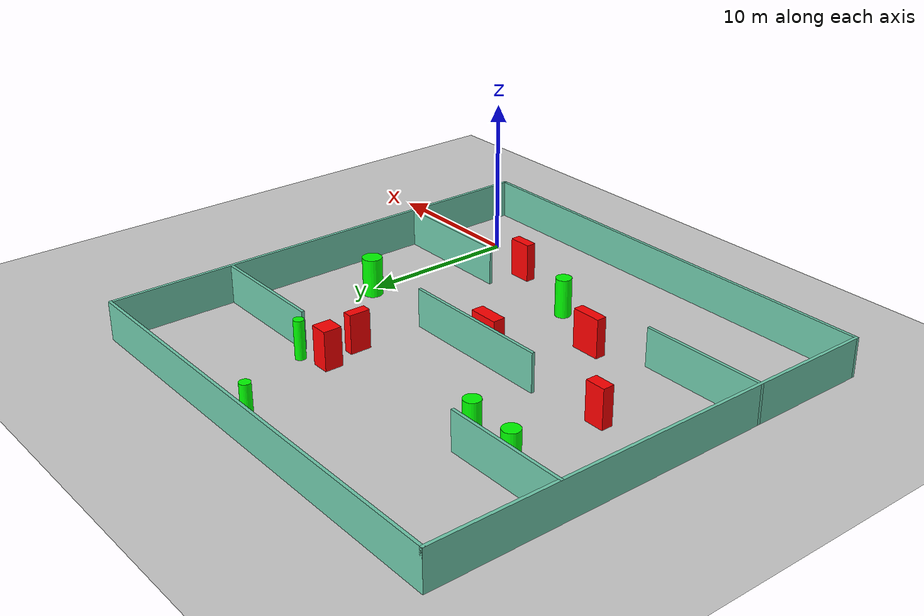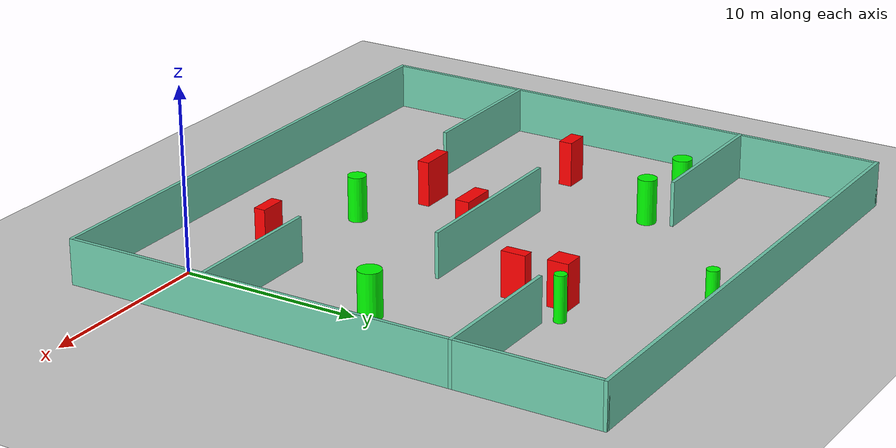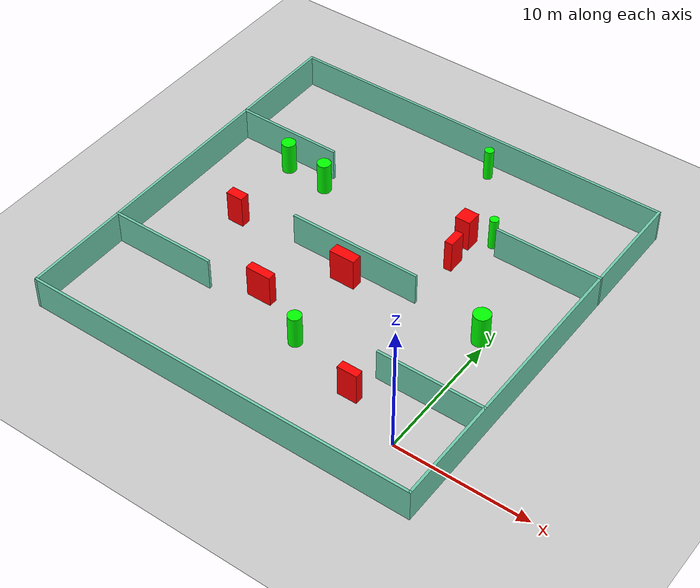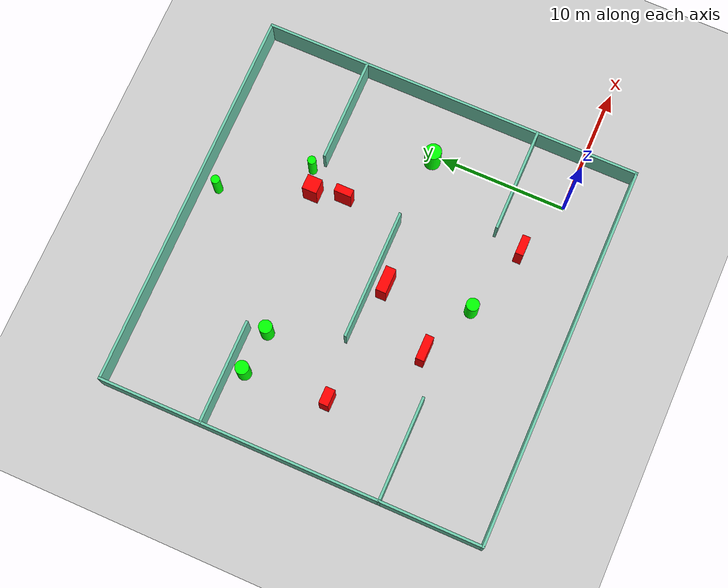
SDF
<sdf version="1.7">
 <world name="default">
  <light name="sun" type="directional">
   <pose>0 0 10 0 -0 0</pose>
   <diffuse>0.8 0.8 0.8 1</diffuse>
   <specular>0.2 0.2 0.2 1</specular>
   <attenuation>
    <range>1000</range>
    <constant>0.9</constant>
    <linear>0.01</linear>
    <quadratic>0.001</quadratic>
   </attenuation>
   <direction>-0.5 0.1 -0.9</direction>
   <spot><inner_angle>0</inner_angle><outer_angle>0</outer_angle><falloff>0</falloff></spot>
  </light>
  <model name="ground_plane">
   <static>1</static>
   <link name="link">
    <collision name="collision">
     <geometry><plane><normal>0 0 1</normal><size>100 100</size></plane></geometry>
     <surface>
      <contact><collide_bitmask>65535</collide_bitmask></contact>
      <friction><ode><mu>100</mu><mu2>50</mu2></ode></friction>
     </surface>
    </collision>
    <visual name="visual">
     <cast_shadows>0</cast_shadows>
     <geometry><plane><normal>0 0 1</normal><size>100 100</size></plane></geometry>
     <material>
      <script><uri>file://media/materials/scripts/gazebo.material</uri><name>Gazebo/Grey</name></script>
     </material>
    </visual>
   </link>
  </model>
  <gravity>0 0 -9.8</gravity>
  <magnetic_field>6e-06 2.3e-05 -4.2e-05</magnetic_field>
  <atmosphere type="adiabatic"/>
  <physics type="ode">
   <max_step_size>0.001</max_step_size>
   <real_time_factor>1</real_time_factor>
   <real_time_update_rate>1000</real_time_update_rate>
  </physics>
  <scene><ambient>0.4 0.4 0.4 1</ambient><background>0.7 0.7 0.7 1</background><shadows>1</shadows></scene>
  <spherical_coordinates>
   <surface_model>EARTH_WGS84</surface_model>
   <latitude_deg>0</latitude_deg>
   <longitude_deg>0</longitude_deg>
   <elevation>0</elevation>
   <heading_deg>0</heading_deg>
  </spherical_coordinates>
  <model name="my_base_walls">
   <link name="Wall_10">
    <collision name="Wall_10_Collision">
     <geometry><box><size>8.2 0.2 2.5</size></box></geometry>
     <pose>0 0 1.25 0 -0 0</pose>
    </collision>
    <visual name="Wall_10_Visual">
     <pose>0 0 1.25 0 -0 0</pose>
     <geometry><box><size>8.2 0.2 2.5</size></box></geometry>
     <material>
      <script><uri>file://media/materials/scripts/gazebo.material</uri><name>Gazebo/Grey</name></script>
      <ambient>0.435294 0.796078 0.67451 1</ambient>
     </material>
     <meta><layer>0</layer></meta>
    </visual>
    <pose>-11 -7 0 0 -0 0</pose>
   </link>
   <link name="Wall_12">
    <collision name="Wall_12_Collision">
     <geometry><box><size>8.2 0.2 2.5</size></box></geometry>
     <pose>0 0 1.25 0 -0 0</pose>
    </collision>
    <visual name="Wall_12_Visual">
     <pose>0 0 1.25 0 -0 0</pose>
     <geometry><box><size>8.2 0.2 2.5</size></box></geometry>
     <material>
      <script><uri>file://media/materials/scripts/gazebo.material</uri><name>Gazebo/Grey</name></script>
      <ambient>0.435294 0.796078 0.67451 1</ambient>
     </material>
     <meta><layer>0</layer></meta>
    </visual>
    <pose>-11 7 0 0 -0 0</pose>
   </link>
   <link name="Wall_14">
    <collision name="Wall_14_Collision">
     <geometry><box><size>8.2 0.2 2.5</size></box></geometry>
     <pose>0 0 1.25 0 -0 0</pose>
    </collision>
    <visual name="Wall_14_Visual">
     <pose>0 0 1.25 0 -0 0</pose>
     <geometry><box><size>8.2 0.2 2.5</size></box></geometry>
     <material>
      <script><uri>file://media/materials/scripts/gazebo.material</uri><name>Gazebo/Grey</name></script>
      <ambient>0.435294 0.796078 0.67451 1</ambient>
     </material>
     <meta><layer>0</layer></meta>
    </visual>
    <pose>11 7 0 0 -0 3.14159</pose>
   </link>
   <link name="Wall_16">
    <collision name="Wall_16_Collision">
     <geometry><box><size>10.2 0.2 2.5</size></box></geometry>
     <pose>0 0 1.25 0 -0 0</pose>
    </collision>
    <visual name="Wall_16_Visual">
     <pose>0 0 1.25 0 -0 0</pose>
     <geometry><box><size>10.2 0.2 2.5</size></box></geometry>
     <material>
      <script><uri>file://media/materials/scripts/gazebo.material</uri><name>Gazebo/Grey</name></script>
      <ambient>0.435294 0.796078 0.67451 1</ambient>
     </material>
     <meta><layer>0</layer></meta>
    </visual>
    <pose>0 0 0 0 -0 3.14159</pose>
   </link>
   <link name="Wall_2">
    <collision name="Wall_2_Collision">
     <geometry><box><size>30.2 0.2 2.5</size></box></geometry>
     <pose>0 0 1.25 0 -0 0</pose>
    </collision>
    <visual name="Wall_2_Visual">
     <pose>0 0 1.25 0 -0 0</pose>
     <geometry><box><size>30.2 0.2 2.5</size></box></geometry>
     <material>
      <script><uri>file://media/materials/scripts/gazebo.material</uri><name>Gazebo/Grey</name></script>
      <ambient>0.435294 0.796078 0.67451 1</ambient>
     </material>
     <meta><layer>0</layer></meta>
    </visual>
    <pose>0 -15 0 0 -0 3.14159</pose>
   </link>
   <link name="Wall_3">
    <collision name="Wall_3_Collision">
     <geometry><box><size>30.2 0.2 2.5</size></box></geometry>
     <pose>0 0 1.25 0 -0 0</pose>
    </collision>
    <visual name="Wall_3_Visual">
     <pose>0 0 1.25 0 -0 0</pose>
     <geometry><box><size>30.2 0.2 2.5</size></box></geometry>
     <material>
      <script><uri>file://media/materials/scripts/gazebo.material</uri><name>Gazebo/Grey</name></script>
      <ambient>0.435294 0.796078 0.67451 1</ambient>
     </material>
     <meta><layer>0</layer></meta>
    </visual>
    <pose>-15 0 0 0 -0 1.5708</pose>
   </link>
   <link name="Wall_4">
    <collision name="Wall_4_Collision">
     <geometry><box><size>30.2 0.2 2.5</size></box></geometry>
     <pose>0 0 1.25 0 -0 0</pose>
    </collision>
    <visual name="Wall_4_Visual">
     <pose>0 0 1.25 0 -0 0</pose>
     <geometry><box><size>30.2 0.2 2.5</size></box></geometry>
     <material>
      <script><uri>file://media/materials/scripts/gazebo.material</uri><name>Gazebo/Grey</name></script>
      <ambient>0.435294 0.796078 0.67451 1</ambient>
     </material>
     <meta><layer>0</layer></meta>
    </visual>
    <pose>0 15 0 0 -0 0</pose>
   </link>
   <link name="Wall_6">
    <collision name="Wall_6_Collision">
     <geometry><box><size>30.2 0.2 2.5</size></box></geometry>
     <pose>0 0 1.25 0 -0 0</pose>
    </collision>
    <visual name="Wall_6_Visual">
     <pose>0 0 1.25 0 -0 0</pose>
     <geometry><box><size>30.2 0.2 2.5</size></box></geometry>
     <material>
      <script><uri>file://media/materials/scripts/gazebo.material</uri><name>Gazebo/Grey</name></script>
      <ambient>0.435294 0.796078 0.67451 1</ambient>
     </material>
     <meta><layer>0</layer></meta>
    </visual>
    <pose>15 0 0 0 -0 1.5708</pose>
   </link>
   <link name="Wall_8">
    <collision name="Wall_8_Collision">
     <geometry><box><size>8.2 0.2 2.5</size></box></geometry>
     <pose>0 0 1.25 0 -0 0</pose>
    </collision>
    <visual name="Wall_8_Visual">
     <pose>0 0 1.25 0 -0 0</pose>
     <geometry><box><size>8.2 0.2 2.5</size></box></geometry>
     <material>
      <script><uri>file://media/materials/scripts/gazebo.material</uri><name>Gazebo/Grey</name></script>
      <ambient>0.435294 0.796078 0.67451 1</ambient>
     </material>
     <meta><layer>0</layer></meta>
    </visual>
    <pose>11 -7 0 0 -0 3.14159</pose>
   </link>
   <static>1</static>
   <pose>-11 11 0 0 -0 0</pose>
  </model>
  <model name="cylinder1">
   <static>1</static>
   <link name="link">
    <inertial>
     <mass>1</mass>
     <inertia><ixx>0.5</ixx><ixy>0</ixy><ixz>0</ixz><iyy>0.5</iyy><iyz>0</iyz><izz>1</izz></inertia>
    </inertial>
    <collision name="collision">
     <geometry><cylinder><radius>0.32824538255338226</radius><length>2.5</length></cylinder></geometry>
    </collision>
    <visual name="visual">
     <geometry><cylinder><radius>0.32824538255338226</radius><length>2.5</length></cylinder></geometry>
     <material>
      <ambient>0 1 0 1</ambient>
      <diffuse>0 1 0 1</diffuse>
      <specular>0.1 0.1 0.1 1</specular>
      <emissive>0 0 0 0</emissive>
     </material>
    </visual>
   </link>
   <pose>-4.758998028650467 18.72728291316398 1.25 0 0 0</pose>
  </model>
  <model name="cylinder2">
   <static>1</static>
   <link name="link">
    <inertial>
     <mass>1</mass>
     <inertia><ixx>0.5</ixx><ixy>0</ixy><ixz>0</ixz><iyy>0.5</iyy><iyz>0</iyz><izz>1</izz></inertia>
    </inertial>
    <collision name="collision">
     <geometry><cylinder><radius>0.5347734483197215</radius><length>2.5</length></cylinder></geometry>
    </collision>
    <visual name="visual">
     <geometry><cylinder><radius>0.5347734483197215</radius><length>2.5</length></cylinder></geometry>
     <material>
      <ambient>0 1 0 1</ambient>
      <diffuse>0 1 0 1</diffuse>
      <specular>0.1 0.1 0.1 1</specular>
      <emissive>0 0 0 0</emissive>
     </material>
    </visual>
   </link>
   <pose>-21.17926220542279 16.90246151942865 1.25 0 0 0</pose>
  </model>
  <model name="cylinder3">
   <static>1</static>
   <link name="link">
    <inertial>
     <mass>1</mass>
     <inertia><ixx>0.5</ixx><ixy>0</ixy><ixz>0</ixz><iyy>0.5</iyy><iyz>0</iyz><izz>1</izz></inertia>
    </inertial>
    <collision name="collision">
     <geometry><cylinder><radius>0.3434992782605161</radius><length>2.5</length></cylinder></geometry>
    </collision>
    <visual name="visual">
     <geometry><cylinder><radius>0.3434992782605161</radius><length>2.5</length></cylinder></geometry>
     <material>
      <ambient>0 1 0 1</ambient>
      <diffuse>0 1 0 1</diffuse>
      <specular>0.1 0.1 0.1 1</specular>
      <emissive>0 0 0 0</emissive>
     </material>
    </visual>
   </link>
   <pose>-9.0211737227377 24.71890614019898 1.25 0 0 0</pose>
  </model>
  <model name="cylinder4">
   <static>1</static>
   <link name="link">
    <inertial>
     <mass>1</mass>
     <inertia><ixx>0.5</ixx><ixy>0</ixy><ixz>0</ixz><iyy>0.5</iyy><iyz>0</iyz><izz>1</izz></inertia>
    </inertial>
    <collision name="collision">
     <geometry><cylinder><radius>0.5197817327386159</radius><length>2.5</length></cylinder></geometry>
    </collision>
    <visual name="visual">
     <geometry><cylinder><radius>0.5197817327386159</radius><length>2.5</length></cylinder></geometry>
     <material>
      <ambient>0 1 0 1</ambient>
      <diffuse>0 1 0 1</diffuse>
      <specular>0.1 0.1 0.1 1</specular>
      <emissive>0 0 0 0</emissive>
     </material>
    </visual>
   </link>
   <pose>-17.755209756759662 16.59681976604614 1.25 0 0 0</pose>
  </model>
  <model name="cylinder5">
   <static>1</static>
   <link name="link">
    <inertial>
     <mass>1</mass>
     <inertia><ixx>0.5</ixx><ixy>0</ixy><ixz>0</ixz><iyy>0.5</iyy><iyz>0</iyz><izz>1</izz></inertia>
    </inertial>
    <collision name="collision">
     <geometry><cylinder><radius>0.5064720394202243</radius><length>2.5</length></cylinder></geometry>
    </collision>
    <visual name="visual">
     <geometry><cylinder><radius>0.5064720394202243</radius><length>2.5</length></cylinder></geometry>
     <material>
      <ambient>0 1 0 1</ambient>
      <diffuse>0 1 0 1</diffuse>
      <specular>0.1 0.1 0.1 1</specular>
      <emissive>0 0 0 0</emissive>
     </material>
    </visual>
   </link>
   <pose>-10.198182500196083 3.376543020781444 1.25 0 0 0</pose>
  </model>
  <model name="cylinder6">
   <static>1</static>
   <link name="link">
    <inertial>
     <mass>1</mass>
     <inertia><ixx>0.5</ixx><ixy>0</ixy><ixz>0</ixz><iyy>0.5</iyy><iyz>0</iyz><izz>1</izz></inertia>
    </inertial>
    <collision name="collision">
     <geometry><cylinder><radius>0.6334909220765585</radius><length>2.5</length></cylinder></geometry>
    </collision>
    <visual name="visual">
     <geometry><cylinder><radius>0.6334909220765585</radius><length>2.5</length></cylinder></geometry>
     <material>
      <ambient>0 1 0 1</ambient>
      <diffuse>0 1 0 1</diffuse>
      <specular>0.1 0.1 0.1 1</specular>
      <emissive>0 0 0 0</emissive>
     </material>
    </visual>
   </link>
   <pose>-0.4927381896906695 10.620417653705832 1.25 0 0 0</pose>
  </model>
  <model name="box1">
   <static>1</static>
   <link name="link">
    <inertial>
     <mass>1</mass>
     <inertia><ixx>0.083</ixx><ixy>0</ixy><ixz>0</ixz><iyy>0.083</iyy><iyz>0</iyz><izz>0.083</izz></inertia>
    </inertial>
    <collision name="collision">
     <geometry><box><size>1.950948104733909 0.6588440306706644 2.5</size></box></geometry>
    </collision>
    <visual name="visual">
     <geometry><box><size>1.950948104733909 0.6588440306706644 2.5</size></box></geometry>
     <material>
      <ambient>1 0 0 1</ambient>
      <diffuse>1 0 0 1</diffuse>
      <specular>0.1 0.1 0.1 1</specular>
      <emissive>0 0 0 0</emissive>
     </material>
    </visual>
    <sensor name="my_contact" type="contact">
     <contact><collision>box_collision</collision><topic>__default_topic__</topic></contact>
    </sensor>
   </link>
   <pose>-14.557982488716881 5.338913759989657 1.25 0 0 0</pose>
  </model>
  <model name="box2">
   <static>1</static>
   <link name="link">
    <inertial>
     <mass>1</mass>
     <inertia><ixx>0.083</ixx><ixy>0</ixy><ixz>0</ixz><iyy>0.083</iyy><iyz>0</iyz><izz>0.083</izz></inertia>
    </inertial>
    <collision name="collision">
     <geometry><box><size>1.1622773771558663 1.1751007438384944 2.5</size></box></geometry>
    </collision>
    <visual name="visual">
     <geometry><box><size>1.1622773771558663 1.1751007438384944 2.5</size></box></geometry>
     <material>
      <ambient>1 0 0 1</ambient>
      <diffuse>1 0 0 1</diffuse>
      <specular>0.1 0.1 0.1 1</specular>
      <emissive>0 0 0 0</emissive>
     </material>
    </visual>
    <sensor name="my_contact" type="contact">
     <contact><collision>box_collision</collision><topic>__default_topic__</topic></contact>
    </sensor>
   </link>
   <pose>-6.4577457943350005 17.931973362966783 1.25 0 0 0</pose>
  </model>
  <model name="box3">
   <static>1</static>
   <link name="link">
    <inertial>
     <mass>1</mass>
     <inertia><ixx>0.083</ixx><ixy>0</ixy><ixz>0</ixz><iyy>0.083</iyy><iyz>0</iyz><izz>0.083</izz></inertia>
    </inertial>
    <collision name="collision">
     <geometry><box><size>1.5232942878181441 0.6327529253006151 2.5</size></box></geometry>
    </collision>
    <visual name="visual">
     <geometry><box><size>1.5232942878181441 0.6327529253006151 2.5</size></box></geometry>
     <material>
      <ambient>1 0 0 1</ambient>
      <diffuse>1 0 0 1</diffuse>
      <specular>0.1 0.1 0.1 1</specular>
      <emissive>0 0 0 0</emissive>
     </material>
    </visual>
    <sensor name="my_contact" type="contact">
     <contact><collision>box_collision</collision><topic>__default_topic__</topic></contact>
    </sensor>
   </link>
   <pose>-4.563210200175217 1.7096458146731521 1.25 0 0 0</pose>
  </model>
  <model name="box4">
   <static>1</static>
   <link name="link">
    <inertial>
     <mass>1</mass>
     <inertia><ixx>0.083</ixx><ixy>0</ixy><ixz>0</ixz><iyy>0.083</iyy><iyz>0</iyz><izz>0.083</izz></inertia>
    </inertial>
    <collision name="collision">
     <geometry><box><size>1.3228761868999395 0.7406624790575437 2.5</size></box></geometry>
    </collision>
    <visual name="visual">
     <geometry><box><size>1.3228761868999395 0.7406624790575437 2.5</size></box></geometry>
     <material>
      <ambient>1 0 0 1</ambient>
      <diffuse>1 0 0 1</diffuse>
      <specular>0.1 0.1 0.1 1</specular>
      <emissive>0 0 0 0</emissive>
     </material>
    </visual>
    <sensor name="my_contact" type="contact">
     <contact><collision>box_collision</collision><topic>__default_topic__</topic></contact>
    </sensor>
   </link>
   <pose>-20.66025713280187 10.406087007237122 1.25 0 0 0</pose>
  </model>
  <model name="box5">
   <static>1</static>
   <link name="link">
    <inertial>
     <mass>1</mass>
     <inertia><ixx>0.083</ixx><ixy>0</ixy><ixz>0</ixz><iyy>0.083</iyy><iyz>0</iyz><izz>0.083</izz></inertia>
    </inertial>
    <collision name="collision">
     <geometry><box><size>0.6132955686093204 1.370858096559916 2.5</size></box></geometry>
    </collision>
    <visual name="visual">
     <geometry><box><size>0.6132955686093204 1.370858096559916 2.5</size></box></geometry>
     <material>
      <ambient>1 0 0 1</ambient>
      <diffuse>1 0 0 1</diffuse>
      <specular>0.1 0.1 0.1 1</specular>
      <emissive>0 0 0 0</emissive>
     </material>
    </visual>
    <sensor name="my_contact" type="contact">
     <contact><collision>box_collision</collision><topic>__default_topic__</topic></contact>
    </sensor>
   </link>
   <pose>-5.965530097148147 15.560635372747239 1.25 0 0 0</pose>
  </model>
  <model name="box6">
   <static>1</static>
   <link name="link">
    <inertial>
     <mass>1</mass>
     <inertia><ixx>0.083</ixx><ixy>0</ixy><ixz>0</ixz><iyy>0.083</iyy><iyz>0</iyz><izz>0.083</izz></inertia>
    </inertial>
    <collision name="collision">
     <geometry><box><size>1.9672191408946489 0.8122465226351132 2.5</size></box></geometry>
    </collision>
    <visual name="visual">
     <geometry><box><size>1.9672191408946489 0.8122465226351132 2.5</size></box></geometry>
     <material>
      <ambient>1 0 0 1</ambient>
      <diffuse>1 0 0 1</diffuse>
      <specular>0.1 0.1 0.1 1</specular>
      <emissive>0 0 0 0</emissive>
     </material>
    </visual>
    <sensor name="my_contact" type="contact">
     <contact><collision>box_collision</collision><topic>__default_topic__</topic></contact>
    </sensor>
   </link>
   <pose>-11.002304841064708 9.95416143043754 1.25 0 0 0</pose>
  </model>
 </world>
</sdf>
